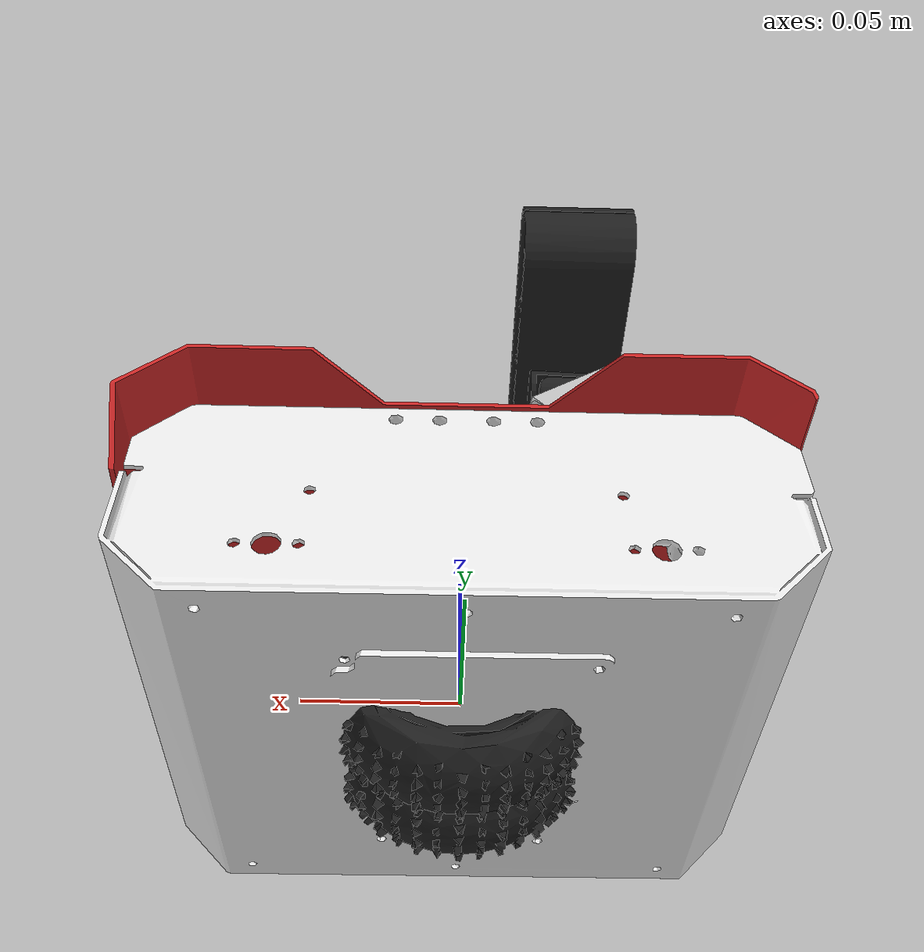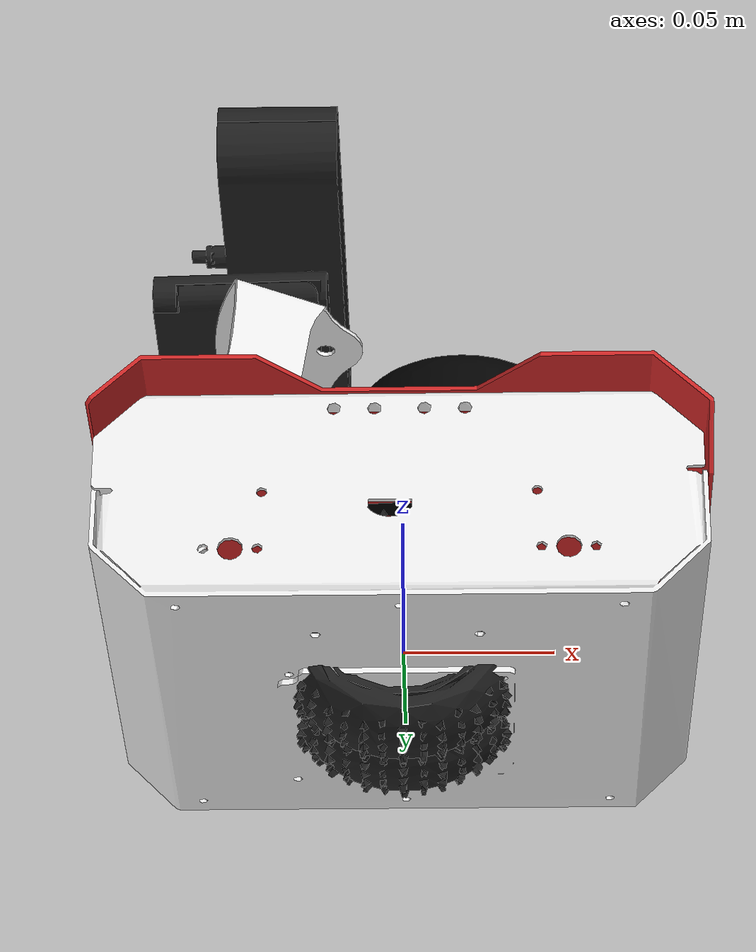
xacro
<?xml version='1.0'?>

<robot name="ROSbot"
  xmlns:xacro="http://www.ros.org/wiki/xacro">

  <xacro:arg name="robot_namespace" default=""/>

  <xacro:property name="cameraSize" value="0.05"/>
  <xacro:property name="cameraMass" value="0.1"/>
  <xacro:property name="namespace" value="$(arg robot_namespace)" />

  <xacro:include filename="$(find rosbot_description)/urdf/rosbot2.gazebo" />
  <xacro:include filename="$(find rosbot_description)/urdf/materials.xacro" />
  <xacro:include filename="$(find rosbot_description)/urdf/macros.xacro" />

  <link name='base_link'>
    <pose>0 0 0.1 0 0 0</pose>

    <inertial>
      <mass value="5"/>
      <origin xyz="0 0 0.04" rpy=" 0 0 0"/>
      <inertia
        ixx="0.1" ixy="0" ixz="0"
        iyy="0.05" iyz="0"
        izz="0.1"
      />
    </inertial>

    <collision name='collision'>
      <origin xyz="0 0 0.02" rpy="0 0 0"/>
      <geometry>
        <box size="0.20 0.15 0.04"/>
      </geometry>
    </collision>

    <visual name='visual'>
      <origin xyz="0 0 -0.02" rpy=" 1.5707 0 1.5707"/>
      <geometry>
        <mesh filename="package://rosbot_description/meshes/box.dae" scale="0.001 0.001 0.001" />
      </geometry>
    </visual>

  </link>

  <joint name="top_cover_joint" type="fixed">
    <axis xyz="0 1 0" />
    <origin xyz="0 0 0" rpy="0 0 0"/>
    <parent link="base_link"/>
    <child link="top_cover"/>
  </joint>

  <link name='top_cover'>
    <pose>0 0 0 0 0 0</pose>

    <inertial>
      <mass value="0.01"/>
      <origin xyz="0 0 0.055" rpy=" 0 0 0"/>
      <inertia
      ixx="0.1" ixy="0" ixz="0"
      iyy="0.05" iyz="0"
      izz="0.1"
      />
    </inertial>
    <visual name='visual'>
      <origin xyz="0 0 0.055" rpy=" 1.5707 0 1.5707"/>
      <geometry>
        <mesh filename="package://rosbot_description/meshes/upper.dae" scale="0.001 0.001 0.001" />
      </geometry>
    </visual>
  </link>

  <link name="front_left_wheel">
    <pose>0.053 0.11 0.02 0 0 0</pose>
    <collision name="collision">
      <origin xyz="0 0 0" rpy="0 0 1.5707"/>
      <geometry>
        <mesh filename="package://rosbot_description/meshes/wheel-v2.stl" scale="0.001 0.001 0.001" />
      </geometry>
      <surface>
        <friction>
          <ode>
            <mu>10</mu>
            <mu2>10</mu2>
          </ode>
        </friction>
      </surface>
    </collision>
    <visual name="front_left_wheel_visual">
      <origin xyz="0 0 0" rpy="0 0 1.5707"/>
      <geometry>
        <mesh filename="package://rosbot_description/meshes/wheel.dae" scale="0.001 0.001 0.001" />
      </geometry>
    </visual>
    <inertial>
      <origin xyz="0 0 0" rpy="0 0 0"/>
      <mass value="0.01"/>
      <inertia
      ixx="0.001" ixy="0.0001" ixz="0.0001"
      iyy="0.001" iyz="0.0001"
      izz="0.001"/>
    </inertial>
  </link>

  <link name="front_right_wheel">
    <pose>0.053 -0.11 0.02 0 0 0</pose>
    <collision name="collision">
      <origin xyz="0 0 0" rpy="0 0 -1.5707"/>
      <geometry>
        <mesh filename="package://rosbot_description/meshes/wheel-v2.stl" scale="0.001 0.001 0.001" />
      </geometry>
      <surface>
        <friction>
          <ode>
            <mu>10</mu>
            <mu2>10</mu2>
          </ode>
        </friction>
      </surface>
    </collision>
    <visual name="front_right_wheel_visual">
      <origin xyz="0 0 0" rpy="0 0 -1.5707"/>
      <geometry>
        <mesh filename="package://rosbot_description/meshes/wheel.dae" scale="0.001 0.001 0.001" />
      </geometry>
    </visual>
    <inertial>
      <origin xyz="0 0 0" rpy="0 0 0"/>
      <mass value="0.01"/>
      <inertia
      ixx="0.001" ixy="0.0001" ixz="0.0001"
      iyy="0.001" iyz="0.0001"
      izz="0.001"/>
    </inertial>
  </link>

  <link name="rear_left_wheel">
    <pose>-0.053 0.11 0.02 0 0 0</pose>
    <collision name="collision">
      <origin xyz="0 0 0" rpy="0 0 1.5707"/>
      <geometry>
        <mesh filename="package://rosbot_description/meshes/wheel-v2.stl" scale="0.001 0.001 0.001" />
      </geometry>
      <surface>
        <friction>
          <ode>
            <mu>10</mu>
            <mu2>10</mu2>
          </ode>
        </friction>
      </surface>
    </collision>
    <visual name="rear_left_wheel_visual">
      <origin xyz="0 0 0" rpy="0 0 1.5707"/>
      <geometry>
        <mesh filename="package://rosbot_description/meshes/wheel.dae" scale="0.001 0.001 0.001" />
      </geometry>
    </visual>
    <inertial>
      <origin xyz="0 0 0" rpy="0 0 0"/>
      <mass value="0.01"/>
      <inertia
      ixx="0.001" ixy="0.0001" ixz="0.0001"
      iyy="0.001" iyz="0.0001"
      izz="0.001"/>
    </inertial>
  </link>

  <link name="rear_right_wheel">
    <pose>-0.053 -0.11 0.02 0 0</pose>
    <collision name="collision">
      <origin xyz="0 0 0" rpy="0 0 -1.5707"/>
      <geometry>
        <mesh filename="package://rosbot_description/meshes/wheel-v2.stl" scale="0.001 0.001 0.001" />
      </geometry>
      <surface>
        <friction>
          <ode>
            <mu>10</mu>
            <mu2>10</mu2>
          </ode>
        </friction>
      </surface>
    </collision>
    <visual name="rear_right_wheel_visual">
      <origin xyz="0 0 0" rpy="0 0 -1.5707"/>
      <geometry>
        <mesh filename="package://rosbot_description/meshes/wheel.dae" scale="0.001 0.001 0.001" />
      </geometry>
    </visual>
    <inertial>
      <origin xyz="0 0 0" rpy="0 0 0"/>
      <mass value="0.01"/>
      <inertia
      ixx="0.001" ixy="0.0001" ixz="0.0001"
      iyy="0.001" iyz="0.0001"
      izz="0.001"/>
    </inertial>
  </link>

  <joint type="continuous" name="front_left_wheel_hinge">
    <origin xyz="0 0 0" rpy="0 0 0"/>
    <child link="front_left_wheel"/>
    <parent link="base_link"/>
    <axis xyz="0 1 0" rpy="0 0 0"/>
    <limit effort="1" velocity="10"/>
    <joint_properties damping="5.0" friction="1.0"/>
  </joint>

  <transmission name="front_left_wheel_trans" type="SimpleTransmission">
    <type>transmission_interface/SimpleTransmission</type>
    <actuator name="front_left_wheel_motor">
      <mechanicalReduction>1</mechanicalReduction>
    </actuator>
    <joint name="front_left_wheel_hinge">
      <hardwareInterface>hardware_interface/EffortJointInterface</hardwareInterface>
    </joint>
  </transmission>

  <joint type="continuous" name="front_right_wheel_hinge">
    <origin xyz="0 0 0" rpy="0 0 0"/>
    <child link="front_right_wheel"/>
    <parent link="base_link"/>
    <axis xyz="0 1 0" rpy="0 0 0"/>
    <limit effort="1" velocity="10"/>
    <joint_properties damping="5.0" friction="1.0"/>
  </joint>

  <transmission name="front_right_wheel_trans" type="SimpleTransmission">
    <type>transmission_interface/SimpleTransmission</type>
    <actuator name="front_right_wheel_motor">
      <mechanicalReduction>1</mechanicalReduction>
    </actuator>
    <joint name="front_right_wheel_hinge">
      <hardwareInterface>hardware_interface/EffortJointInterface</hardwareInterface>
    </joint>
  </transmission>

  <joint type="continuous" name="rear_left_wheel_hinge">
    <origin xyz="0 0 0" rpy="0 0 0"/>
    <child link="rear_left_wheel"/>
    <parent link="base_link"/>
    <axis xyz="0 1 0" rpy="0 0 0"/>
    <limit effort="1" velocity="10"/>
    <joint_properties damping="5.0" friction="1.0"/>
  </joint>

  <transmission name="rear_left_wheel_trans" type="SimpleTransmission">
    <type>transmission_interface/SimpleTransmission</type>
    <actuator name="rear_left_wheel_motor">
      <mechanicalReduction>1</mechanicalReduction>
    </actuator>
    <joint name="rear_left_wheel_hinge">
      <hardwareInterface>hardware_interface/EffortJointInterface</hardwareInterface>
    </joint>
  </transmission>

  <joint type="continuous" name="rear_right_wheel_hinge">
    <origin xyz="0 0 0" rpy="0 0 0"/>
    <child link="rear_right_wheel"/>
    <parent link="base_link"/>
    <axis xyz="0 1 0" rpy="0 0 0"/>
    <limit effort="1" velocity="10"/>
    <joint_properties damping="5.0" friction="1.0"/>
  </joint>

  <transmission name="rear_right_wheel_trans" type="SimpleTransmission">
    <type>transmission_interface/SimpleTransmission</type>
    <actuator name="rear_right_wheel_motor">
      <mechanicalReduction>1</mechanicalReduction>
    </actuator>
    <joint name="rear_right_wheel_hinge">
      <hardwareInterface>hardware_interface/EffortJointInterface</hardwareInterface>
    </joint>
  </transmission>

  <!-- Orbbec Astra RGBD Camera -->
  <joint name="camera_joint" type="fixed">
    <axis xyz="0 0 0" />
    <origin xyz="-0.03 0 0.18" rpy="0 0 0"/>
    <parent link="base_link"/>
    <child link="camera_link"/>
  </joint>

  <link name="camera_link">
    <pose>0 0 0 0 0 0</pose>
    <collision>
      <origin xyz="0.02 0 0" rpy="0 0 0"/>
      <geometry>0
        <box size="0.001 0.001 0.001"/>
      </geometry>
    </collision>

    <visual>
      <origin xyz="-0.01 0 -0.03" rpy="1.5707 0 1.5707"/>
      <geometry>
        <mesh filename="package://rosbot_description/meshes/astra.dae" scale="0.001 0.001 0.001" />
      </geometry>
    </visual>

    <inertial>
      <mass value="1e-4" />
      <origin xyz="0 0 0" rpy="0 0 0"/>
      <inertia ixx="0.1" ixy="0" ixz="0" iyy="0.05" iyz="0" izz="0.1" />
    </inertial>
  </link>

  <joint name="camera_optical_joint" type="fixed">
    <origin xyz="0 0 0" rpy="${-pi/2} 0 ${-pi/2}"/>
    <parent link="camera_link"/>
    <child link="camera_rgb_frame"/>
  </joint>

  <link name="camera_rgb_frame">
  </link>

  <joint name="camera_depth_joint" type="fixed">
    <origin xyz="0 0 0" rpy="${-pi/2} 0 ${-pi/2}"/>
    <parent link="camera_link"/>
    <child link="camera_depth_frame"/>
  </joint>

  <link name="camera_depth_frame">
  </link>

  <joint name="laser_joint" type="fixed">
    <axis xyz="0 1 0" />
    <origin xyz="0.02 0 0.058" rpy="0 0 3.14"/>
    <parent link="base_link"/>
    <child link="laser_link"/>
  </joint>

  <!-- rplidar Laser -->
  <!-- maybe use A3 -->
  <link name="laser_link">
    <pose>0 0 0 0 0 0</pose>
    <collision>
      <origin xyz="0 0 0" rpy="1.5707 0 4.71"/>
      <geometry>
        <mesh filename="package://rosbot_description/meshes/rplidar.dae" scale="0.001 0.001 0.001" />
      </geometry>
    </collision>

    <visual>
      <origin xyz="0 0 0" rpy="1.5707 0 4.71"/>
      <geometry>
        <mesh filename="package://rosbot_description/meshes/rplidar.dae" scale="0.001 0.001 0.001" />
      </geometry>
    </visual>

    <inertial>
      <mass value="1e-4" />
      <origin xyz="0 0 0" rpy="1.5707 0 4.71"/>
      <inertia ixx="0.1" ixy="0" ixz="0" iyy="0.05" iyz="0" izz="0.1" />
    </inertial>
  </link>

  <joint name="range_fl_joint" type="fixed">
    <axis xyz="0 1 0" />
    <origin xyz="0.1 0.05 0.01" rpy="0 0 0.13 "/>
    <parent link="base_link"/>
    <child link="range_fl"/>
  </joint>

  <link name="range_fl">
    <pose>0 0 0 0 0 0</pose>
    <inertial>
      <mass value="1e-4" />
      <origin xyz="0 0 0" rpy="0 0 0"/>
      <inertia ixx="0.1" ixy="0" ixz="0" iyy="0.05" iyz="0" izz="0.1" />
    </inertial>
  </link>

  <joint name="range_fr_joint" type="fixed">
    <axis xyz="0 1 0" />
    <origin xyz="0.1 -0.05 0.01" rpy="0 0 -0.13 "/>
    <parent link="base_link"/>
    <child link="range_fr"/>
  </joint>

  <link name="range_fr">
    <pose>0 0 0 0 0 0</pose>
    <inertial>
      <mass value="1e-4" />
      <origin xyz="0 0 0" rpy="0 0 0"/>
      <inertia ixx="0.1" ixy="0" ixz="0" iyy="0.05" iyz="0" izz="0.1" />
    </inertial>
  </link>

  <joint name="range_rl_joint" type="fixed">
    <axis xyz="0 1 0" />
    <origin xyz="-0.1 0.05 0.01" rpy="0 0 3.01 "/>
    <parent link="base_link"/>
    <child link="range_rl"/>
  </joint>

  <link name="range_rl">
    <pose>0 0 0 0 0 0</pose>
    <inertial>
      <mass value="1e-4" />
      <origin xyz="0 0 0" rpy="0 0 0"/>
      <inertia ixx="0.1" ixy="0" ixz="0" iyy="0.05" iyz="0" izz="0.1" />
    </inertial>
  </link>

  <joint name="range_rr_joint" type="fixed">
    <axis xyz="0 1 0" />
    <origin xyz="-0.1 -0.05 0.01" rpy="0 0 3.27 "/>
    <parent link="base_link"/>
    <child link="range_rr"/>
  </joint>

  <link name="range_rr">
    <pose>0 0 0 0 0 0</pose>
    <inertial>
      <mass value="1e-4" />
      <origin xyz="0 0 0" rpy="0 0 0"/>
      <inertia ixx="0.1" ixy="0" ixz="0" iyy="0.05" iyz="0" izz="0.1" />
    </inertial>
  </link>

</robot>
